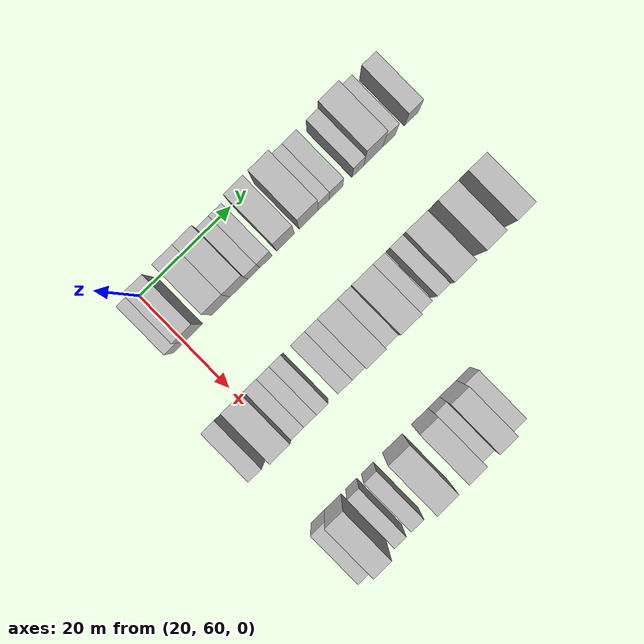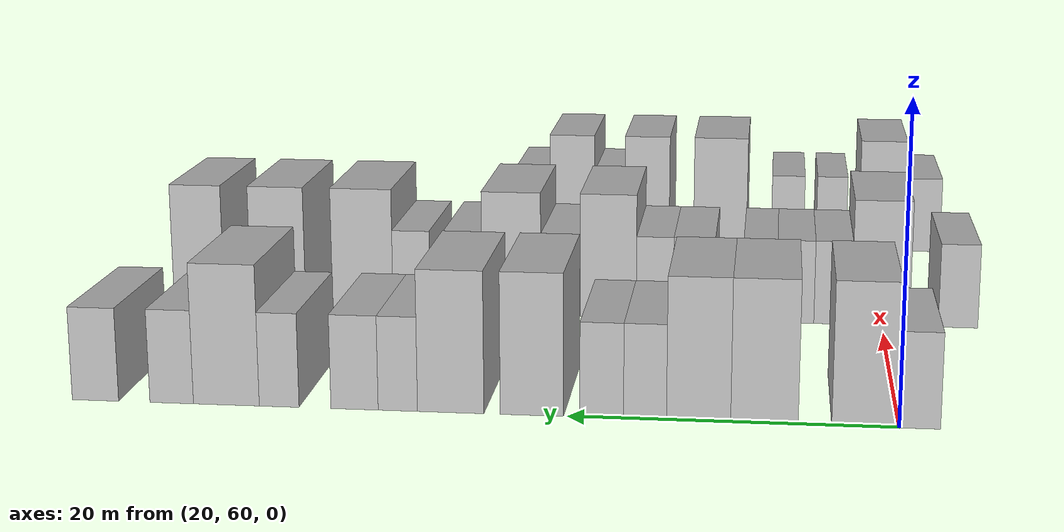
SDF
<sdf version="1.6">
 <world name="default">
  <model name="building_109">
   <static>1</static>
   <pose>25.0000 58.8449 0 0.000000 0.000000 0.000000</pose>
   <link name="link">
    <pose>0 0 3.00 0 0 0</pose>
    <collision name="collision"><geometry><box><size>10.0000 2.5119 6.0000</size></box></geometry></collision>
    <visual name="visual">
     <cast_shadows>0</cast_shadows>
     <geometry><box><size>10.0000 2.5119 6.0000</size></box></geometry>
     <material>
      <script>
       <uri>model://HANNAS_wall/materials/scripts</uri>
       <uri>model://HANNAS_wall/materials/textures</uri>
       <name>vrc/HANNAS_wall</name>
      </script>
     </material>
    </visual>
   </link>
  </model>
  <model name="building_110">
   <static>1</static>
   <pose>25.0000 62.0689 0 0.000000 0.000000 0.000000</pose>
   <link name="link">
    <pose>0 0 4.50 0 0 0</pose>
    <collision name="collision"><geometry><box><size>10.0000 3.9360 9.0000</size></box></geometry></collision>
    <visual name="visual">
     <cast_shadows>0</cast_shadows>
     <geometry><box><size>10.0000 3.9360 9.0000</size></box></geometry>
     <material>
      <script>
       <uri>model://HANNAS_wall/materials/scripts</uri>
       <uri>model://HANNAS_wall/materials/textures</uri>
       <name>vrc/HANNAS_wall</name>
      </script>
     </material>
    </visual>
   </link>
  </model>
  <model name="building_111">
   <static>1</static>
   <pose>25.0000 68.0616 0 0.000000 0.000000 0.000000</pose>
   <link name="link">
    <pose>0 0 4.50 0 0 0</pose>
    <collision name="collision"><geometry><box><size>10.0000 4.0495 9.0000</size></box></geometry></collision>
    <visual name="visual">
     <cast_shadows>0</cast_shadows>
     <geometry><box><size>10.0000 4.0495 9.0000</size></box></geometry>
     <material>
      <script>
       <uri>model://HANNAS_wall/materials/scripts</uri>
       <uri>model://HANNAS_wall/materials/textures</uri>
       <name>vrc/HANNAS_wall</name>
      </script>
     </material>
    </visual>
   </link>
  </model>
  <model name="building_112">
   <static>1</static>
   <pose>25.0000 72.0251 0 0.000000 0.000000 0.000000</pose>
   <link name="link">
    <pose>0 0 4.50 0 0 0</pose>
    <collision name="collision"><geometry><box><size>10.0000 3.8775 9.0000</size></box></geometry></collision>
    <visual name="visual">
     <cast_shadows>0</cast_shadows>
     <geometry><box><size>10.0000 3.8775 9.0000</size></box></geometry>
     <material>
      <script>
       <uri>model://HANNAS_wall/materials/scripts</uri>
       <uri>model://HANNAS_wall/materials/textures</uri>
       <name>vrc/HANNAS_wall</name>
      </script>
     </material>
    </visual>
   </link>
  </model>
  <model name="building_113">
   <static>1</static>
   <pose>25.0000 75.2679 0 0.000000 0.000000 0.000000</pose>
   <link name="link">
    <pose>0 0 3.00 0 0 0</pose>
    <collision name="collision"><geometry><box><size>10.0000 2.6082 6.0000</size></box></geometry></collision>
    <visual name="visual">
     <cast_shadows>0</cast_shadows>
     <geometry><box><size>10.0000 2.6082 6.0000</size></box></geometry>
     <material>
      <script>
       <uri>model://HANNAS_wall/materials/scripts</uri>
       <uri>model://HANNAS_wall/materials/textures</uri>
       <name>vrc/HANNAS_wall</name>
      </script>
     </material>
    </visual>
   </link>
  </model>
  <model name="building_114">
   <static>1</static>
   <pose>25.0000 77.9025 0 0.000000 0.000000 0.000000</pose>
   <link name="link">
    <pose>0 0 3.00 0 0 0</pose>
    <collision name="collision"><geometry><box><size>10.0000 2.6610 6.0000</size></box></geometry></collision>
    <visual name="visual">
     <cast_shadows>0</cast_shadows>
     <geometry><box><size>10.0000 2.6610 6.0000</size></box></geometry>
     <material>
      <script>
       <uri>model://HANNAS_wall/materials/scripts</uri>
       <uri>model://HANNAS_wall/materials/textures</uri>
       <name>vrc/HANNAS_wall</name>
      </script>
     </material>
    </visual>
   </link>
  </model>
  <model name="building_115">
   <static>1</static>
   <pose>25.0000 82.1770 0 0.000000 0.000000 0.000000</pose>
   <link name="link">
    <pose>0 0 4.50 0 0 0</pose>
    <collision name="collision"><geometry><box><size>10.0000 3.8881 9.0000</size></box></geometry></collision>
    <visual name="visual">
     <cast_shadows>0</cast_shadows>
     <geometry><box><size>10.0000 3.8881 9.0000</size></box></geometry>
     <material>
      <script>
       <uri>model://HANNAS_wall/materials/scripts</uri>
       <uri>model://HANNAS_wall/materials/textures</uri>
       <name>vrc/HANNAS_wall</name>
      </script>
     </material>
    </visual>
   </link>
  </model>
  <model name="building_116">
   <static>1</static>
   <pose>25.0000 87.1787 0 0.000000 0.000000 0.000000</pose>
   <link name="link">
    <pose>0 0 4.50 0 0 0</pose>
    <collision name="collision"><geometry><box><size>10.0000 4.1153 9.0000</size></box></geometry></collision>
    <visual name="visual">
     <cast_shadows>0</cast_shadows>
     <geometry><box><size>10.0000 4.1153 9.0000</size></box></geometry>
     <material>
      <script>
       <uri>model://HANNAS_wall/materials/scripts</uri>
       <uri>model://HANNAS_wall/materials/textures</uri>
       <name>vrc/HANNAS_wall</name>
      </script>
     </material>
    </visual>
   </link>
  </model>
  <model name="building_117">
   <static>1</static>
   <pose>25.0000 90.4605 0 0.000000 0.000000 0.000000</pose>
   <link name="link">
    <pose>0 0 3.00 0 0 0</pose>
    <collision name="collision"><geometry><box><size>10.0000 2.4484 6.0000</size></box></geometry></collision>
    <visual name="visual">
     <cast_shadows>0</cast_shadows>
     <geometry><box><size>10.0000 2.4484 6.0000</size></box></geometry>
     <material>
      <script>
       <uri>model://HANNAS_wall/materials/scripts</uri>
       <uri>model://HANNAS_wall/materials/textures</uri>
       <name>vrc/HANNAS_wall</name>
      </script>
     </material>
    </visual>
   </link>
  </model>
  <model name="building_118">
   <static>1</static>
   <pose>25.0000 93.1627 0 0.000000 0.000000 0.000000</pose>
   <link name="link">
    <pose>0 0 3.00 0 0 0</pose>
    <collision name="collision"><geometry><box><size>10.0000 2.9559 6.0000</size></box></geometry></collision>
    <visual name="visual">
     <cast_shadows>0</cast_shadows>
     <geometry><box><size>10.0000 2.9559 6.0000</size></box></geometry>
     <material>
      <script>
       <uri>model://HANNAS_wall/materials/scripts</uri>
       <uri>model://HANNAS_wall/materials/textures</uri>
       <name>vrc/HANNAS_wall</name>
      </script>
     </material>
    </visual>
   </link>
  </model>
  <model name="building_119">
   <static>1</static>
   <pose>25.0000 97.8962 0 0.000000 0.000000 0.000000</pose>
   <link name="link">
    <pose>0 0 3.00 0 0 0</pose>
    <collision name="collision"><geometry><box><size>10.0000 2.5111 6.0000</size></box></geometry></collision>
    <visual name="visual">
     <cast_shadows>0</cast_shadows>
     <geometry><box><size>10.0000 2.5111 6.0000</size></box></geometry>
     <material>
      <script>
       <uri>model://HANNAS_wall/materials/scripts</uri>
       <uri>model://HANNAS_wall/materials/textures</uri>
       <name>vrc/HANNAS_wall</name>
      </script>
     </material>
    </visual>
   </link>
  </model>
  <model name="building_120">
   <static>1</static>
   <pose>25.0000 101.2377 0 0.000000 0.000000 0.000000</pose>
   <link name="link">
    <pose>0 0 4.50 0 0 0</pose>
    <collision name="collision"><geometry><box><size>10.0000 4.1719 9.0000</size></box></geometry></collision>
    <visual name="visual">
     <cast_shadows>0</cast_shadows>
     <geometry><box><size>10.0000 4.1719 9.0000</size></box></geometry>
     <material>
      <script>
       <uri>model://HANNAS_wall/materials/scripts</uri>
       <uri>model://HANNAS_wall/materials/textures</uri>
       <name>vrc/HANNAS_wall</name>
      </script>
     </material>
    </visual>
   </link>
  </model>
  <model name="building_121">
   <static>1</static>
   <pose>25.0000 104.7127 0 0.000000 0.000000 0.000000</pose>
   <link name="link">
    <pose>0 0 3.00 0 0 0</pose>
    <collision name="collision"><geometry><box><size>10.0000 2.7781 6.0000</size></box></geometry></collision>
    <visual name="visual">
     <cast_shadows>0</cast_shadows>
     <geometry><box><size>10.0000 2.7781 6.0000</size></box></geometry>
     <material>
      <script>
       <uri>model://HANNAS_wall/materials/scripts</uri>
       <uri>model://HANNAS_wall/materials/textures</uri>
       <name>vrc/HANNAS_wall</name>
      </script>
     </material>
    </visual>
   </link>
  </model>
  <model name="building_122">
   <static>1</static>
   <pose>25.0000 109.5897 0 0.000000 0.000000 0.000000</pose>
   <link name="link">
    <pose>0 0 3.00 0 0 0</pose>
    <collision name="collision"><geometry><box><size>10.0000 2.9760 6.0000</size></box></geometry></collision>
    <visual name="visual">
     <cast_shadows>0</cast_shadows>
     <geometry><box><size>10.0000 2.9760 6.0000</size></box></geometry>
     <material>
      <script>
       <uri>model://HANNAS_wall/materials/scripts</uri>
       <uri>model://HANNAS_wall/materials/textures</uri>
       <name>vrc/HANNAS_wall</name>
      </script>
     </material>
    </visual>
   </link>
  </model>
  <model name="building_307">
   <static>1</static>
   <pose>47.0000 54.7107 0 0.000000 0.000000 0.000000</pose>
   <link name="link">
    <pose>0 0 3.00 0 0 0</pose>
    <collision name="collision"><geometry><box><size>10.0000 2.7434 6.0000</size></box></geometry></collision>
    <visual name="visual">
     <cast_shadows>0</cast_shadows>
     <geometry><box><size>10.0000 2.7434 6.0000</size></box></geometry>
     <material>
      <script>
       <uri>model://HANNAS_wall/materials/scripts</uri>
       <uri>model://HANNAS_wall/materials/textures</uri>
       <name>vrc/HANNAS_wall</name>
      </script>
     </material>
    </visual>
   </link>
  </model>
  <model name="building_308">
   <static>1</static>
   <pose>47.0000 60.1135 0 0.000000 0.000000 0.000000</pose>
   <link name="link">
    <pose>0 0 4.50 0 0 0</pose>
    <collision name="collision"><geometry><box><size>10.0000 4.0622 9.0000</size></box></geometry></collision>
    <visual name="visual">
     <cast_shadows>0</cast_shadows>
     <geometry><box><size>10.0000 4.0622 9.0000</size></box></geometry>
     <material>
      <script>
       <uri>model://HANNAS_wall/materials/scripts</uri>
       <uri>model://HANNAS_wall/materials/textures</uri>
       <name>vrc/HANNAS_wall</name>
      </script>
     </material>
    </visual>
   </link>
  </model>
  <model name="building_309">
   <static>1</static>
   <pose>47.0000 63.4617 0 0.000000 0.000000 0.000000</pose>
   <link name="link">
    <pose>0 0 3.00 0 0 0</pose>
    <collision name="collision"><geometry><box><size>10.0000 2.6343 6.0000</size></box></geometry></collision>
    <visual name="visual">
     <cast_shadows>0</cast_shadows>
     <geometry><box><size>10.0000 2.6343 6.0000</size></box></geometry>
     <material>
      <script>
       <uri>model://HANNAS_wall/materials/scripts</uri>
       <uri>model://HANNAS_wall/materials/textures</uri>
       <name>vrc/HANNAS_wall</name>
      </script>
     </material>
    </visual>
   </link>
  </model>
  <model name="building_310">
   <static>1</static>
   <pose>47.0000 66.0944 0 0.000000 0.000000 0.000000</pose>
   <link name="link">
    <pose>0 0 3.00 0 0 0</pose>
    <collision name="collision"><geometry><box><size>10.0000 2.6312 6.0000</size></box></geometry></collision>
    <visual name="visual">
     <cast_shadows>0</cast_shadows>
     <geometry><box><size>10.0000 2.6312 6.0000</size></box></geometry>
     <material>
      <script>
       <uri>model://HANNAS_wall/materials/scripts</uri>
       <uri>model://HANNAS_wall/materials/textures</uri>
       <name>vrc/HANNAS_wall</name>
      </script>
     </material>
    </visual>
   </link>
  </model>
  <model name="building_311">
   <static>1</static>
   <pose>47.0000 68.6134 0 0.000000 0.000000 0.000000</pose>
   <link name="link">
    <pose>0 0 3.00 0 0 0</pose>
    <collision name="collision"><geometry><box><size>10.0000 2.4066 6.0000</size></box></geometry></collision>
    <visual name="visual">
     <cast_shadows>0</cast_shadows>
     <geometry><box><size>10.0000 2.4066 6.0000</size></box></geometry>
     <material>
      <script>
       <uri>model://HANNAS_wall/materials/scripts</uri>
       <uri>model://HANNAS_wall/materials/textures</uri>
       <name>vrc/HANNAS_wall</name>
      </script>
     </material>
    </visual>
   </link>
  </model>
  <model name="building_312">
   <static>1</static>
   <pose>47.0000 73.2799 0 0.000000 0.000000 0.000000</pose>
   <link name="link">
    <pose>0 0 3.00 0 0 0</pose>
    <collision name="collision"><geometry><box><size>10.0000 2.9265 6.0000</size></box></geometry></collision>
    <visual name="visual">
     <cast_shadows>0</cast_shadows>
     <geometry><box><size>10.0000 2.9265 6.0000</size></box></geometry>
     <material>
      <script>
       <uri>model://HANNAS_wall/materials/scripts</uri>
       <uri>model://HANNAS_wall/materials/textures</uri>
       <name>vrc/HANNAS_wall</name>
      </script>
     </material>
    </visual>
   </link>
  </model>
  <model name="building_313">
   <static>1</static>
   <pose>47.0000 76.0657 0 0.000000 0.000000 0.000000</pose>
   <link name="link">
    <pose>0 0 3.00 0 0 0</pose>
    <collision name="collision"><geometry><box><size>10.0000 2.6452 6.0000</size></box></geometry></collision>
    <visual name="visual">
     <cast_shadows>0</cast_shadows>
     <geometry><box><size>10.0000 2.6452 6.0000</size></box></geometry>
     <material>
      <script>
       <uri>model://HANNAS_wall/materials/scripts</uri>
       <uri>model://HANNAS_wall/materials/textures</uri>
       <name>vrc/HANNAS_wall</name>
      </script>
     </material>
    </visual>
   </link>
  </model>
  <model name="building_314">
   <static>1</static>
   <pose>47.0000 79.4030 0 0.000000 0.000000 0.000000</pose>
   <link name="link">
    <pose>0 0 4.50 0 0 0</pose>
    <collision name="collision"><geometry><box><size>10.0000 4.0294 9.0000</size></box></geometry></collision>
    <visual name="visual">
     <cast_shadows>0</cast_shadows>
     <geometry><box><size>10.0000 4.0294 9.0000</size></box></geometry>
     <material>
      <script>
       <uri>model://HANNAS_wall/materials/scripts</uri>
       <uri>model://HANNAS_wall/materials/textures</uri>
       <name>vrc/HANNAS_wall</name>
      </script>
     </material>
    </visual>
   </link>
  </model>
  <model name="building_315">
   <static>1</static>
   <pose>47.0000 82.8329 0 0.000000 0.000000 0.000000</pose>
   <link name="link">
    <pose>0 0 3.00 0 0 0</pose>
    <collision name="collision"><geometry><box><size>10.0000 2.8305 6.0000</size></box></geometry></collision>
    <visual name="visual">
     <cast_shadows>0</cast_shadows>
     <geometry><box><size>10.0000 2.8305 6.0000</size></box></geometry>
     <material>
      <script>
       <uri>model://HANNAS_wall/materials/scripts</uri>
       <uri>model://HANNAS_wall/materials/textures</uri>
       <name>vrc/HANNAS_wall</name>
      </script>
     </material>
    </visual>
   </link>
  </model>
  <model name="building_316">
   <static>1</static>
   <pose>47.0000 86.3748 0 0.000000 0.000000 0.000000</pose>
   <link name="link">
    <pose>0 0 4.50 0 0 0</pose>
    <collision name="collision"><geometry><box><size>10.0000 4.2534 9.0000</size></box></geometry></collision>
    <visual name="visual">
     <cast_shadows>0</cast_shadows>
     <geometry><box><size>10.0000 4.2534 9.0000</size></box></geometry>
     <material>
      <script>
       <uri>model://HANNAS_wall/materials/scripts</uri>
       <uri>model://HANNAS_wall/materials/textures</uri>
       <name>vrc/HANNAS_wall</name>
      </script>
     </material>
    </visual>
   </link>
  </model>
  <model name="building_317">
   <static>1</static>
   <pose>47.0000 89.8968 0 0.000000 0.000000 0.000000</pose>
   <link name="link">
    <pose>0 0 3.00 0 0 0</pose>
    <collision name="collision"><geometry><box><size>10.0000 2.7906 6.0000</size></box></geometry></collision>
    <visual name="visual">
     <cast_shadows>0</cast_shadows>
     <geometry><box><size>10.0000 2.7906 6.0000</size></box></geometry>
     <material>
      <script>
       <uri>model://HANNAS_wall/materials/scripts</uri>
       <uri>model://HANNAS_wall/materials/textures</uri>
       <name>vrc/HANNAS_wall</name>
      </script>
     </material>
    </visual>
   </link>
  </model>
  <model name="building_318">
   <static>1</static>
   <pose>47.0000 93.6478 0 0.000000 0.000000 0.000000</pose>
   <link name="link">
    <pose>0 0 3.00 0 0 0</pose>
    <collision name="collision"><geometry><box><size>10.0000 2.7114 6.0000</size></box></geometry></collision>
    <visual name="visual">
     <cast_shadows>0</cast_shadows>
     <geometry><box><size>10.0000 2.7114 6.0000</size></box></geometry>
     <material>
      <script>
       <uri>model://HANNAS_wall/materials/scripts</uri>
       <uri>model://HANNAS_wall/materials/textures</uri>
       <name>vrc/HANNAS_wall</name>
      </script>
     </material>
    </visual>
   </link>
  </model>
  <model name="building_319">
   <static>1</static>
   <pose>47.0000 97.2249 0 0.000000 0.000000 0.000000</pose>
   <link name="link">
    <pose>0 0 4.50 0 0 0</pose>
    <collision name="collision"><geometry><box><size>10.0000 4.4428 9.0000</size></box></geometry></collision>
    <visual name="visual">
     <cast_shadows>0</cast_shadows>
     <geometry><box><size>10.0000 4.4428 9.0000</size></box></geometry>
     <material>
      <script>
       <uri>model://HANNAS_wall/materials/scripts</uri>
       <uri>model://HANNAS_wall/materials/textures</uri>
       <name>vrc/HANNAS_wall</name>
      </script>
     </material>
    </visual>
   </link>
  </model>
  <model name="building_320">
   <static>1</static>
   <pose>47.0000 103.4730 0 0.000000 0.000000 0.000000</pose>
   <link name="link">
    <pose>0 0 4.50 0 0 0</pose>
    <collision name="collision"><geometry><box><size>10.0000 4.0535 9.0000</size></box></geometry></collision>
    <visual name="visual">
     <cast_shadows>0</cast_shadows>
     <geometry><box><size>10.0000 4.0535 9.0000</size></box></geometry>
     <material>
      <script>
       <uri>model://HANNAS_wall/materials/scripts</uri>
       <uri>model://HANNAS_wall/materials/textures</uri>
       <name>vrc/HANNAS_wall</name>
      </script>
     </material>
    </visual>
   </link>
  </model>
  <model name="building_321">
   <static>1</static>
   <pose>47.0000 109.3763 0 0.000000 0.000000 0.000000</pose>
   <link name="link">
    <pose>0 0 4.50 0 0 0</pose>
    <collision name="collision"><geometry><box><size>10.0000 3.7531 9.0000</size></box></geometry></collision>
    <visual name="visual">
     <cast_shadows>0</cast_shadows>
     <geometry><box><size>10.0000 3.7531 9.0000</size></box></geometry>
     <material>
      <script>
       <uri>model://HANNAS_wall/materials/scripts</uri>
       <uri>model://HANNAS_wall/materials/textures</uri>
       <name>vrc/HANNAS_wall</name>
      </script>
     </material>
    </visual>
   </link>
  </model>
  <model name="building_488">
   <static>1</static>
   <pose>69.0000 55.7362 0 0.000000 0.000000 0.000000</pose>
   <link name="link">
    <pose>0 0 3.00 0 0 0</pose>
    <collision name="collision"><geometry><box><size>10.0000 2.8598 6.0000</size></box></geometry></collision>
    <visual name="visual">
     <cast_shadows>0</cast_shadows>
     <geometry><box><size>10.0000 2.8598 6.0000</size></box></geometry>
     <material>
      <script>
       <uri>model://HANNAS_wall/materials/scripts</uri>
       <uri>model://HANNAS_wall/materials/textures</uri>
       <name>vrc/HANNAS_wall</name>
      </script>
     </material>
    </visual>
   </link>
  </model>
  <model name="building_489">
   <static>1</static>
   <pose>69.0000 59.0054 0 0.000000 0.000000 0.000000</pose>
   <link name="link">
    <pose>0 0 4.50 0 0 0</pose>
    <collision name="collision"><geometry><box><size>10.0000 3.6785 9.0000</size></box></geometry></collision>
    <visual name="visual">
     <cast_shadows>0</cast_shadows>
     <geometry><box><size>10.0000 3.6785 9.0000</size></box></geometry>
     <material>
      <script>
       <uri>model://HANNAS_wall/materials/scripts</uri>
       <uri>model://HANNAS_wall/materials/textures</uri>
       <name>vrc/HANNAS_wall</name>
      </script>
     </material>
    </visual>
   </link>
  </model>
  <model name="building_490">
   <static>1</static>
   <pose>69.0000 63.0643 0 0.000000 0.000000 0.000000</pose>
   <link name="link">
    <pose>0 0 3.00 0 0 0</pose>
    <collision name="collision"><geometry><box><size>10.0000 2.4393 6.0000</size></box></geometry></collision>
    <visual name="visual">
     <cast_shadows>0</cast_shadows>
     <geometry><box><size>10.0000 2.4393 6.0000</size></box></geometry>
     <material>
      <script>
       <uri>model://HANNAS_wall/materials/scripts</uri>
       <uri>model://HANNAS_wall/materials/textures</uri>
       <name>vrc/HANNAS_wall</name>
      </script>
     </material>
    </visual>
   </link>
  </model>
  <model name="building_491">
   <static>1</static>
   <pose>69.0000 66.6027 0 0.000000 0.000000 0.000000</pose>
   <link name="link">
    <pose>0 0 3.00 0 0 0</pose>
    <collision name="collision"><geometry><box><size>10.0000 2.6375 6.0000</size></box></geometry></collision>
    <visual name="visual">
     <cast_shadows>0</cast_shadows>
     <geometry><box><size>10.0000 2.6375 6.0000</size></box></geometry>
     <material>
      <script>
       <uri>model://HANNAS_wall/materials/scripts</uri>
       <uri>model://HANNAS_wall/materials/textures</uri>
       <name>vrc/HANNAS_wall</name>
      </script>
     </material>
    </visual>
   </link>
  </model>
  <model name="building_492">
   <static>1</static>
   <pose>69.0000 72.0898 0 0.000000 0.000000 0.000000</pose>
   <link name="link">
    <pose>0 0 4.50 0 0 0</pose>
    <collision name="collision"><geometry><box><size>10.0000 4.3366 9.0000</size></box></geometry></collision>
    <visual name="visual">
     <cast_shadows>0</cast_shadows>
     <geometry><box><size>10.0000 4.3366 9.0000</size></box></geometry>
     <material>
      <script>
       <uri>model://HANNAS_wall/materials/scripts</uri>
       <uri>model://HANNAS_wall/materials/textures</uri>
       <name>vrc/HANNAS_wall</name>
      </script>
     </material>
    </visual>
   </link>
  </model>
  <model name="building_493">
   <static>1</static>
   <pose>69.0000 78.0869 0 0.000000 0.000000 0.000000</pose>
   <link name="link">
    <pose>0 0 4.50 0 0 0</pose>
    <collision name="collision"><geometry><box><size>10.0000 3.6577 9.0000</size></box></geometry></collision>
    <visual name="visual">
     <cast_shadows>0</cast_shadows>
     <geometry><box><size>10.0000 3.6577 9.0000</size></box></geometry>
     <material>
      <script>
       <uri>model://HANNAS_wall/materials/scripts</uri>
       <uri>model://HANNAS_wall/materials/textures</uri>
       <name>vrc/HANNAS_wall</name>
      </script>
     </material>
    </visual>
   </link>
  </model>
  <model name="building_494">
   <static>1</static>
   <pose>69.0000 81.1674 0 0.000000 0.000000 0.000000</pose>
   <link name="link">
    <pose>0 0 3.00 0 0 0</pose>
    <collision name="collision"><geometry><box><size>10.0000 2.5033 6.0000</size></box></geometry></collision>
    <visual name="visual">
     <cast_shadows>0</cast_shadows>
     <geometry><box><size>10.0000 2.5033 6.0000</size></box></geometry>
     <material>
      <script>
       <uri>model://HANNAS_wall/materials/scripts</uri>
       <uri>model://HANNAS_wall/materials/textures</uri>
       <name>vrc/HANNAS_wall</name>
      </script>
     </material>
    </visual>
   </link>
  </model>
  <model name="building_495">
   <static>1</static>
   <pose>69.0000 84.2546 0 0.000000 0.000000 0.000000</pose>
   <link name="link">
    <pose>0 0 4.50 0 0 0</pose>
    <collision name="collision"><geometry><box><size>10.0000 3.6713 9.0000</size></box></geometry></collision>
    <visual name="visual">
     <cast_shadows>0</cast_shadows>
     <geometry><box><size>10.0000 3.6713 9.0000</size></box></geometry>
     <material>
      <script>
       <uri>model://HANNAS_wall/materials/scripts</uri>
       <uri>model://HANNAS_wall/materials/textures</uri>
       <name>vrc/HANNAS_wall</name>
      </script>
     </material>
    </visual>
   </link>
  </model>
  <model name="building_496">
   <static>1</static>
   <pose>69.0000 87.5713 0 0.000000 0.000000 0.000000</pose>
   <link name="link">
    <pose>0 0 3.00 0 0 0</pose>
    <collision name="collision"><geometry><box><size>10.0000 2.9621 6.0000</size></box></geometry></collision>
    <visual name="visual">
     <cast_shadows>0</cast_shadows>
     <geometry><box><size>10.0000 2.9621 6.0000</size></box></geometry>
     <material>
      <script>
       <uri>model://HANNAS_wall/materials/scripts</uri>
       <uri>model://HANNAS_wall/materials/textures</uri>
       <name>vrc/HANNAS_wall</name>
      </script>
     </material>
    </visual>
   </link>
  </model>
 </world>
</sdf>
